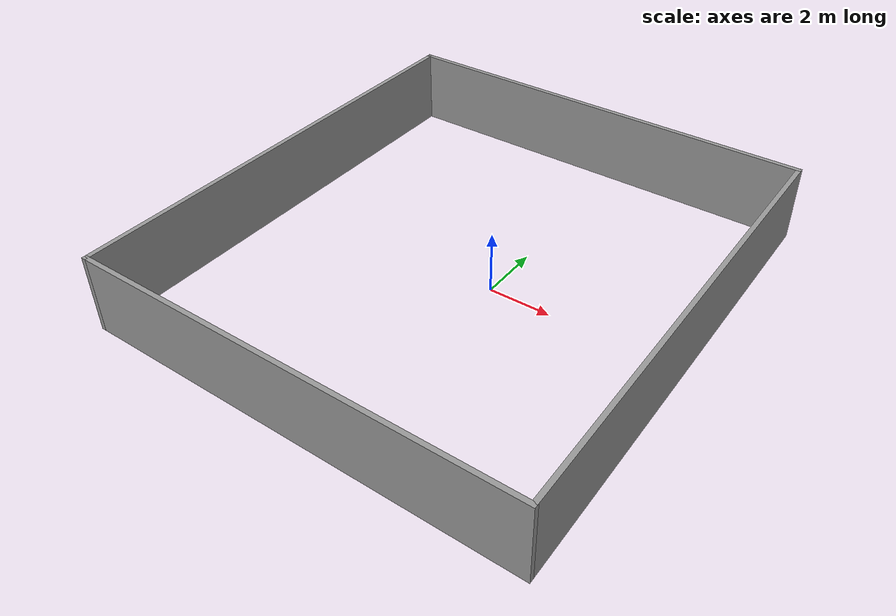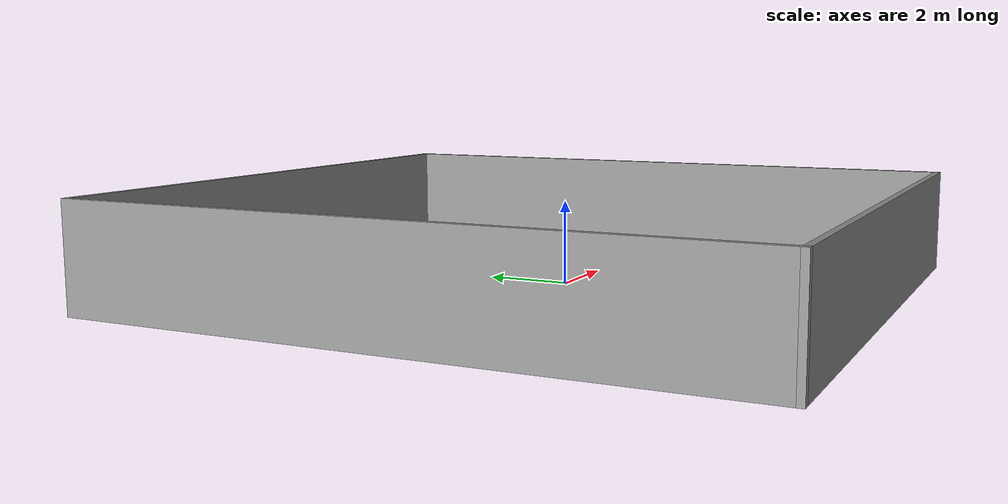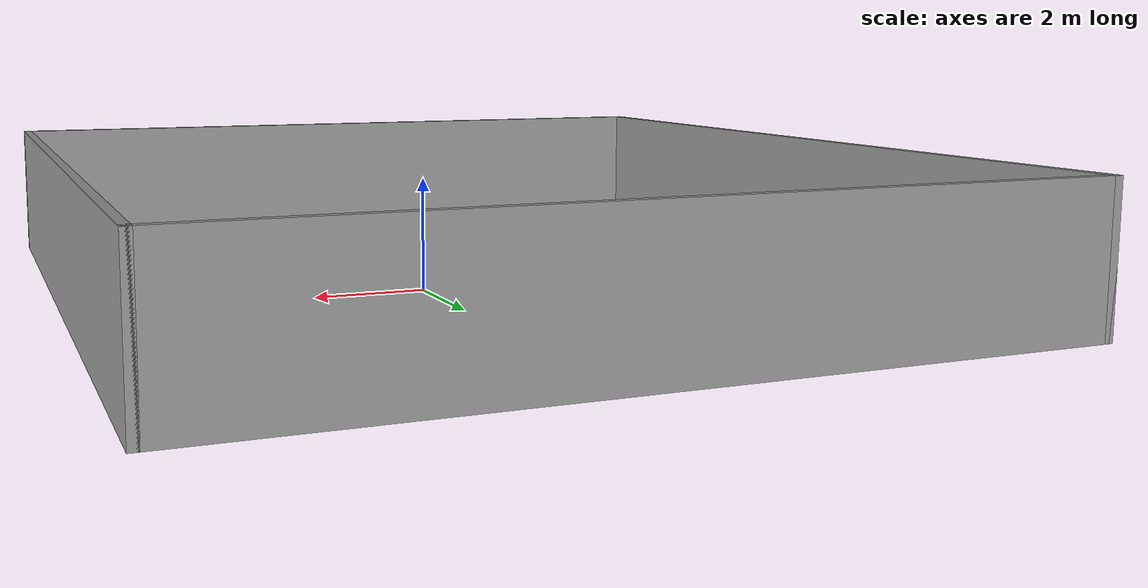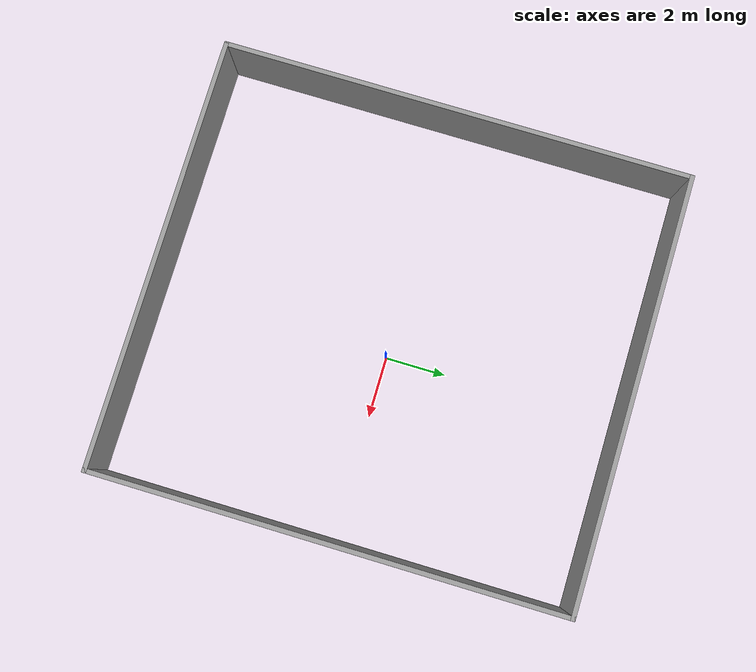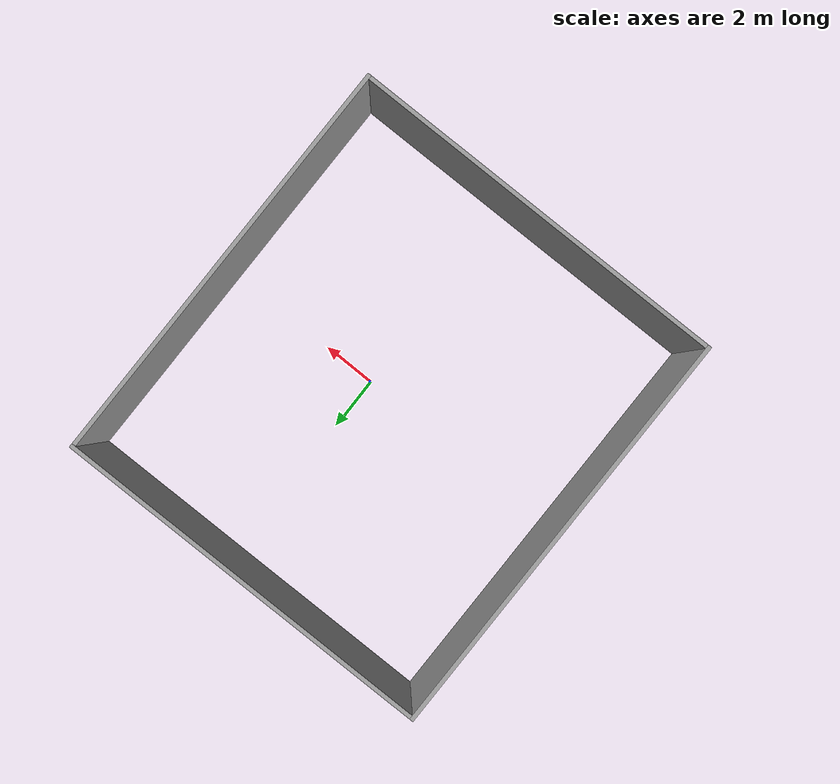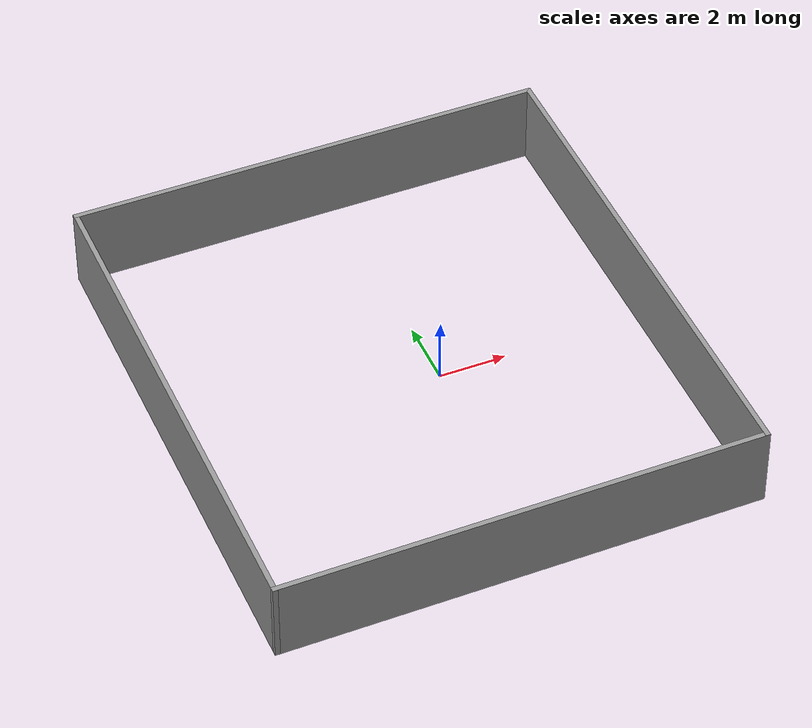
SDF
<?xml version='1.0'?>
<sdf version='1.7'>
  <model name='rl_world'>
    <pose>-0.906546 -0.016685 0 0 -0 0</pose>
    <link name='Wall_1'>
      <collision name='Wall_1_Collision'>
        <geometry>
          <box>
            <size>15.5 0.15 2.5</size>
          </box>
        </geometry>
        <pose>0 0 1.25 0 -0 0</pose>
      </collision>
      <visual name='Wall_1_Visual'>
        <pose>0 0 1.25 0 -0 0</pose>
        <geometry>
          <box>
            <size>15.5 0.15 2.5</size>
          </box>
        </geometry>
        <material>
          <script>
            <uri>file://media/materials/scripts/gazebo.material</uri>
            <name>Gazebo/Grey</name>
          </script>
          <ambient>1 1 1 1</ambient>
        </material>
        <meta>
          <layer>0</layer>
        </meta>
      </visual>
      <pose>-7.05 0 0 0 -0 1.5708</pose>
    </link>
    <link name='Wall_2'>
      <collision name='Wall_2_Collision'>
        <geometry>
          <box>
            <size>14.25 0.15 2.5</size>
          </box>
        </geometry>
        <pose>0 0 1.25 0 -0 0</pose>
      </collision>
      <visual name='Wall_2_Visual'>
        <pose>0 0 1.25 0 -0 0</pose>
        <geometry>
          <box>
            <size>14.25 0.15 2.5</size>
          </box>
        </geometry>
        <material>
          <script>
            <uri>file://media/materials/scripts/gazebo.material</uri>
            <name>Gazebo/Grey</name>
          </script>
          <ambient>1 1 1 1</ambient>
        </material>
        <meta>
          <layer>0</layer>
        </meta>
      </visual>
      <pose>0 7.675 0 0 -0 0</pose>
    </link>
    <link name='Wall_3'>
      <collision name='Wall_3_Collision'>
        <geometry>
          <box>
            <size>15.5 0.15 2.5</size>
          </box>
        </geometry>
        <pose>0 0 1.25 0 -0 0</pose>
      </collision>
      <visual name='Wall_3_Visual'>
        <pose>0 0 1.25 0 -0 0</pose>
        <geometry>
          <box>
            <size>15.5 0.15 2.5</size>
          </box>
        </geometry>
        <material>
          <script>
            <uri>file://media/materials/scripts/gazebo.material</uri>
            <name>Gazebo/Grey</name>
          </script>
          <ambient>1 1 1 1</ambient>
        </material>
        <meta>
          <layer>0</layer>
        </meta>
      </visual>
      <pose>7.05 0 0 0 -0 -1.5708</pose>
    </link>
    <link name='Wall_4'>
      <collision name='Wall_4_Collision'>
        <geometry>
          <box>
            <size>14.25 0.15 2.5</size>
          </box>
        </geometry>
        <pose>0 0 1.25 0 -0 0</pose>
      </collision>
      <visual name='Wall_4_Visual'>
        <pose>0 0 1.25 0 -0 0</pose>
        <geometry>
          <box>
            <size>14.25 0.15 2.5</size>
          </box>
        </geometry>
        <material>
          <script>
            <uri>file://media/materials/scripts/gazebo.material</uri>
            <name>Gazebo/Grey</name>
          </script>
          <ambient>1 1 1 1</ambient>
        </material>
        <meta>
          <layer>0</layer>
        </meta>
      </visual>
      <pose>0 -7.675 0 0 -0 3.14159</pose>
    </link>
    <static>1</static>
  </model>
</sdf>
